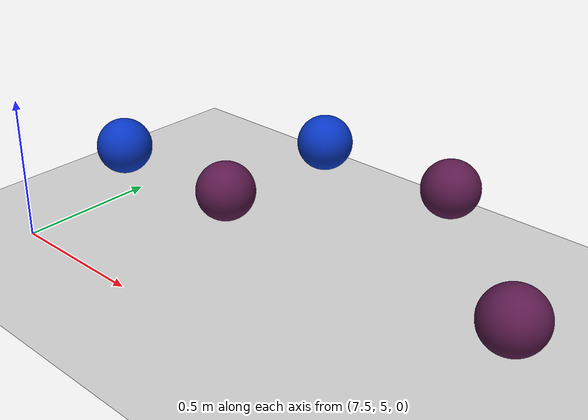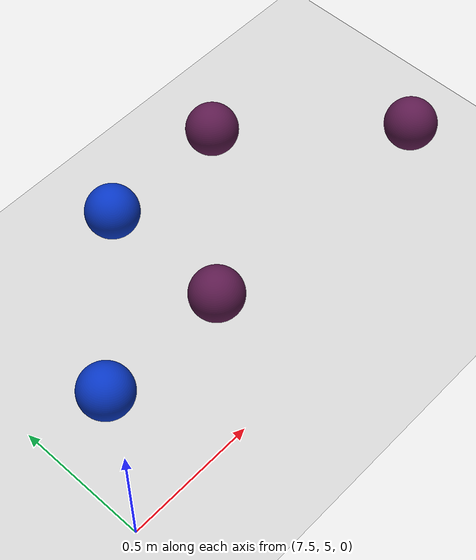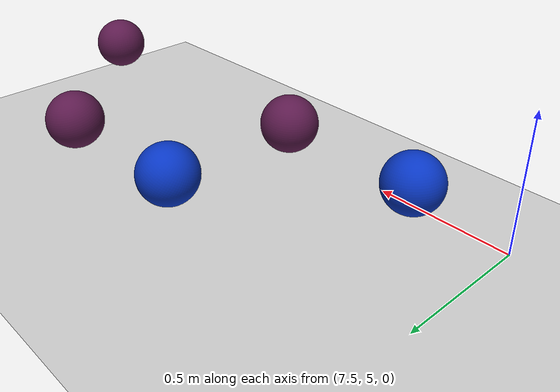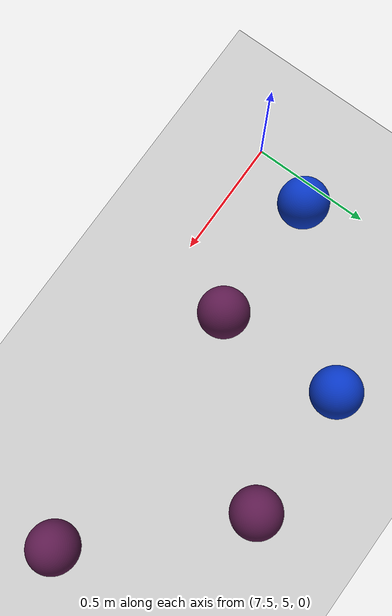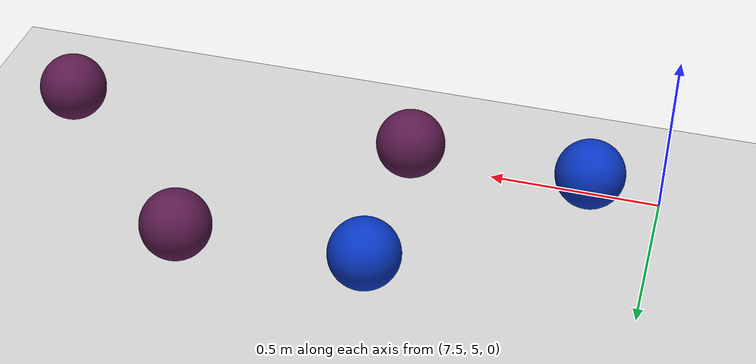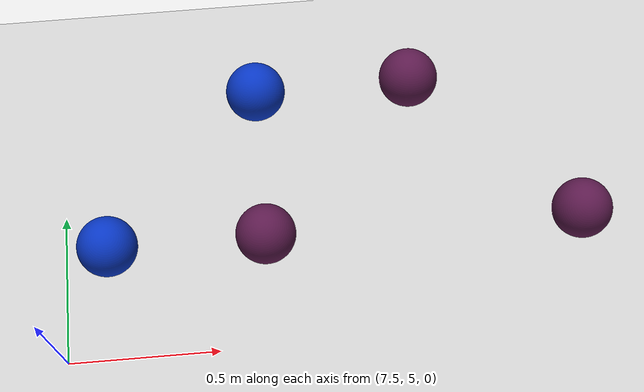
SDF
<sdf version="1.7">
 <world name="default">
  <model name="ground_plane">
   <static>1</static>
   <link name="link">
    <collision name="collision">
     <geometry><plane><normal>0 0 1</normal><size>100 100</size></plane></geometry>
     <surface>
      <contact><collide_bitmask>65535</collide_bitmask></contact>
      <friction><ode><mu>100</mu><mu2>50</mu2></ode></friction>
     </surface>
    </collision>
    <visual name="visual">
     <cast_shadows>0</cast_shadows>
     <geometry><plane><normal>0 0 1</normal><size>100 100</size></plane></geometry>
     <material>
      <script><uri>file://media/materials/scripts/gazebo.material</uri><name>Gazebo/Grey</name></script>
     </material>
    </visual>
   </link>
  </model>
  <model name="ball_empty_clone_6">
   <link name="link_1">
    <inertial>
     <mass>1</mass>
     <inertia>
      <ixx>0.166667</ixx>
      <ixy>0</ixy>
      <ixz>0</ixz>
      <iyy>0.166667</iyy>
      <iyz>0</iyz>
      <izz>0.166667</izz>
     </inertia>
    </inertial>
    <visual name="visual">
     <geometry>
      <mesh>
       <uri>/home/entity014/abu2024_ws/src/abu_description/worlds/ball_empty.dae</uri>
       <scale>1 1 1</scale>
      </mesh>
     </geometry>
    </visual>
    <collision name="collision">
     <geometry>
      <mesh>
       <uri>/home/entity014/abu2024_ws/src/abu_description/worlds/ball_empty.dae</uri>
       <scale>1 1 1</scale>
      </mesh>
     </geometry>
     <surface>
      <friction>
       <ode><mu>1</mu><mu2>1</mu2><fdir1>0 0 0</fdir1><slip1>0</slip1><slip2>0</slip2></ode>
       <torsional>
        <coefficient>1</coefficient>
        <patch_radius>0</patch_radius>
        <surface_radius>0</surface_radius>
        <use_patch_radius>1</use_patch_radius>
        <ode><slip>0</slip></ode>
       </torsional>
      </friction>
      <bounce><restitution_coefficient>0</restitution_coefficient><threshold>1e+06</threshold></bounce>
      <contact>
       <collide_without_contact>0</collide_without_contact>
       <collide_without_contact_bitmask>1</collide_without_contact_bitmask>
       <collide_bitmask>1</collide_bitmask>
       <ode>
        <soft_cfm>0</soft_cfm>
        <soft_erp>0.2</soft_erp>
        <kp>1e+13</kp>
        <kd>1</kd>
        <max_vel>0.01</max_vel>
        <min_depth>0</min_depth>
       </ode>
       <bullet>
        <split_impulse>1</split_impulse>
        <split_impulse_penetration_threshold>-0.01</split_impulse_penetration_threshold>
        <soft_cfm>0</soft_cfm>
        <soft_erp>0.2</soft_erp>
        <kp>1e+13</kp>
        <kd>1</kd>
       </bullet>
      </contact>
     </surface>
    </collision>
   </link>
   <static>0</static>
   <pose>8.18145 5.29224 0.302561 -0.039211 -0.105829 0.091703</pose>
  </model>
  <model name="ball_empty_clone_7">
   <link name="link_1">
    <inertial>
     <mass>1</mass>
     <inertia>
      <ixx>0.166667</ixx>
      <ixy>0</ixy>
      <ixz>0</ixz>
      <iyy>0.166667</iyy>
      <iyz>0</iyz>
      <izz>0.166667</izz>
     </inertia>
    </inertial>
    <visual name="visual">
     <geometry>
      <mesh>
       <uri>/home/entity014/abu2024_ws/src/abu_description/worlds/ball_empty.dae</uri>
       <scale>1 1 1</scale>
      </mesh>
     </geometry>
    </visual>
    <collision name="collision">
     <geometry>
      <mesh>
       <uri>/home/entity014/abu2024_ws/src/abu_description/worlds/ball_empty.dae</uri>
       <scale>1 1 1</scale>
      </mesh>
     </geometry>
     <surface>
      <friction>
       <ode><mu>1</mu><mu2>1</mu2><fdir1>0 0 0</fdir1><slip1>0</slip1><slip2>0</slip2></ode>
       <torsional>
        <coefficient>1</coefficient>
        <patch_radius>0</patch_radius>
        <surface_radius>0</surface_radius>
        <use_patch_radius>1</use_patch_radius>
        <ode><slip>0</slip></ode>
       </torsional>
      </friction>
      <bounce><restitution_coefficient>0</restitution_coefficient><threshold>1e+06</threshold></bounce>
      <contact>
       <collide_without_contact>0</collide_without_contact>
       <collide_without_contact_bitmask>1</collide_without_contact_bitmask>
       <collide_bitmask>1</collide_bitmask>
       <ode>
        <soft_cfm>0</soft_cfm>
        <soft_erp>0.2</soft_erp>
        <kp>1e+13</kp>
        <kd>1</kd>
        <max_vel>0.01</max_vel>
        <min_depth>0</min_depth>
       </ode>
       <bullet>
        <split_impulse>1</split_impulse>
        <split_impulse_penetration_threshold>-0.01</split_impulse_penetration_threshold>
        <soft_cfm>0</soft_cfm>
        <soft_erp>0.2</soft_erp>
        <kp>1e+13</kp>
        <kd>1</kd>
       </bullet>
      </contact>
     </surface>
    </collision>
   </link>
   <static>0</static>
   <pose>8.68324 5.79099 0.302597 -0.21571 0.041297 -0.088061</pose>
  </model>
  <model name="ball_empty_clone_8">
   <link name="link_1">
    <inertial>
     <mass>1</mass>
     <inertia>
      <ixx>0.166667</ixx>
      <ixy>0</ixy>
      <ixz>0</ixz>
      <iyy>0.166667</iyy>
      <iyz>0</iyz>
      <izz>0.166667</izz>
     </inertia>
    </inertial>
    <visual name="visual">
     <geometry>
      <mesh>
       <uri>/home/entity014/abu2024_ws/src/abu_description/worlds/ball_empty.dae</uri>
       <scale>1 1 1</scale>
      </mesh>
     </geometry>
    </visual>
    <collision name="collision">
     <geometry>
      <mesh>
       <uri>/home/entity014/abu2024_ws/src/abu_description/worlds/ball_empty.dae</uri>
       <scale>1 1 1</scale>
      </mesh>
     </geometry>
     <surface>
      <friction>
       <ode><mu>1</mu><mu2>1</mu2><fdir1>0 0 0</fdir1><slip1>0</slip1><slip2>0</slip2></ode>
       <torsional>
        <coefficient>1</coefficient>
        <patch_radius>0</patch_radius>
        <surface_radius>0</surface_radius>
        <use_patch_radius>1</use_patch_radius>
        <ode><slip>0</slip></ode>
       </torsional>
      </friction>
      <bounce><restitution_coefficient>0</restitution_coefficient><threshold>1e+06</threshold></bounce>
      <contact>
       <collide_without_contact>0</collide_without_contact>
       <collide_without_contact_bitmask>1</collide_without_contact_bitmask>
       <collide_bitmask>1</collide_bitmask>
       <ode>
        <soft_cfm>0</soft_cfm>
        <soft_erp>0.2</soft_erp>
        <kp>1e+13</kp>
        <kd>1</kd>
        <max_vel>0.01</max_vel>
        <min_depth>0</min_depth>
       </ode>
       <bullet>
        <split_impulse>1</split_impulse>
        <split_impulse_penetration_threshold>-0.01</split_impulse_penetration_threshold>
        <soft_cfm>0</soft_cfm>
        <soft_erp>0.2</soft_erp>
        <kp>1e+13</kp>
        <kd>1</kd>
       </bullet>
      </contact>
     </surface>
    </collision>
   </link>
   <static>0</static>
   <pose>9.18359 5.29276 0.302548 0.279778 0.013928 0.024379</pose>
  </model>
  <model name="ball_blue_0">
   <link name="link_1">
    <inertial>
     <mass>1</mass>
     <inertia>
      <ixx>0.166667</ixx>
      <ixy>0</ixy>
      <ixz>0</ixz>
      <iyy>0.166667</iyy>
      <iyz>0</iyz>
      <izz>0.166667</izz>
     </inertia>
    </inertial>
    <visual name="visual">
     <geometry>
      <mesh>
       <uri>/home/entity014/abu2024_ws/src/abu_description/worlds/ball_blue.dae</uri>
       <scale>1 1 1</scale>
      </mesh>
     </geometry>
    </visual>
    <collision name="collision">
     <geometry>
      <mesh>
       <uri>/home/entity014/abu2024_ws/src/abu_description/worlds/ball_blue.dae</uri>
       <scale>1 1 1</scale>
      </mesh>
     </geometry>
     <surface>
      <friction>
       <ode><mu>1</mu><mu2>1</mu2><fdir1>0 0 0</fdir1><slip1>0</slip1><slip2>0</slip2></ode>
       <torsional>
        <coefficient>1</coefficient>
        <patch_radius>0</patch_radius>
        <surface_radius>0</surface_radius>
        <use_patch_radius>1</use_patch_radius>
        <ode><slip>0</slip></ode>
       </torsional>
      </friction>
      <bounce><restitution_coefficient>0</restitution_coefficient><threshold>1e+06</threshold></bounce>
      <contact>
       <collide_without_contact>0</collide_without_contact>
       <collide_without_contact_bitmask>1</collide_without_contact_bitmask>
       <collide_bitmask>1</collide_bitmask>
       <ode>
        <soft_cfm>0</soft_cfm>
        <soft_erp>0.2</soft_erp>
        <kp>1e+13</kp>
        <kd>1</kd>
        <max_vel>0.01</max_vel>
        <min_depth>0</min_depth>
       </ode>
       <bullet>
        <split_impulse>1</split_impulse>
        <split_impulse_penetration_threshold>-0.01</split_impulse_penetration_threshold>
        <soft_cfm>0</soft_cfm>
        <soft_erp>0.2</soft_erp>
        <kp>1e+13</kp>
        <kd>1</kd>
       </bullet>
      </contact>
     </surface>
    </collision>
   </link>
   <static>0</static>
   <pose>8.18133 5.7781 0.311036 0.435854 -0.384093 0.049279</pose>
  </model>
  <model name="ball_blue_1">
   <link name="link_1">
    <inertial>
     <mass>1</mass>
     <inertia>
      <ixx>0.166667</ixx>
      <ixy>0</ixy>
      <ixz>0</ixz>
      <iyy>0.166667</iyy>
      <iyz>0</iyz>
      <izz>0.166667</izz>
     </inertia>
    </inertial>
    <visual name="visual">
     <geometry>
      <mesh>
       <uri>/home/entity014/abu2024_ws/src/abu_description/worlds/ball_blue.dae</uri>
       <scale>1 1 1</scale>
      </mesh>
     </geometry>
    </visual>
    <collision name="collision">
     <geometry>
      <mesh>
       <uri>/home/entity014/abu2024_ws/src/abu_description/worlds/ball_blue.dae</uri>
       <scale>1 1 1</scale>
      </mesh>
     </geometry>
     <surface>
      <friction>
       <ode><mu>1</mu><mu2>1</mu2><fdir1>0 0 0</fdir1><slip1>0</slip1><slip2>0</slip2></ode>
       <torsional>
        <coefficient>1</coefficient>
        <patch_radius>0</patch_radius>
        <surface_radius>0</surface_radius>
        <use_patch_radius>1</use_patch_radius>
        <ode><slip>0</slip></ode>
       </torsional>
      </friction>
      <bounce><restitution_coefficient>0</restitution_coefficient><threshold>1e+06</threshold></bounce>
      <contact>
       <collide_without_contact>0</collide_without_contact>
       <collide_without_contact_bitmask>1</collide_without_contact_bitmask>
       <collide_bitmask>1</collide_bitmask>
       <ode>
        <soft_cfm>0</soft_cfm>
        <soft_erp>0.2</soft_erp>
        <kp>1e+13</kp>
        <kd>1</kd>
        <max_vel>0.01</max_vel>
        <min_depth>0</min_depth>
       </ode>
       <bullet>
        <split_impulse>1</split_impulse>
        <split_impulse_penetration_threshold>-0.01</split_impulse_penetration_threshold>
        <soft_cfm>0</soft_cfm>
        <soft_erp>0.2</soft_erp>
        <kp>1e+13</kp>
        <kd>1</kd>
       </bullet>
      </contact>
     </surface>
    </collision>
   </link>
   <static>0</static>
   <pose>7.68437 5.29269 0.302544 0.016043 0.119994 -0.090779</pose>
  </model>
 </world>
</sdf>
